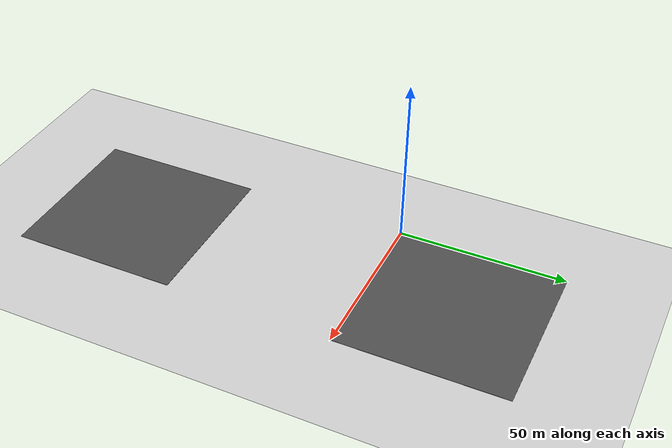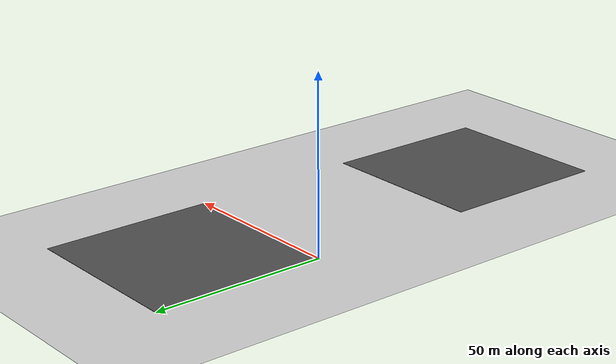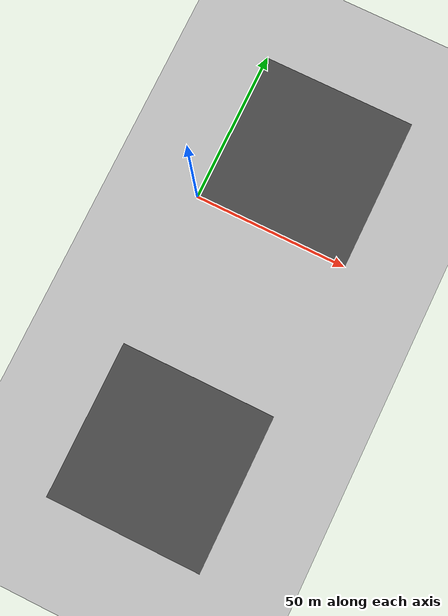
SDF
<sdf version="1.7">
 <world name="default">
  <model name="ground_plane">
   <static>1</static>
   <link name="link">
    <collision name="collision">
     <geometry><plane><normal>0 0 1</normal><size>100 100</size></plane></geometry>
     <surface>
      <contact><collide_bitmask>65535</collide_bitmask></contact>
      <friction><ode><mu>100</mu><mu2>50</mu2></ode></friction>
     </surface>
    </collision>
    <visual name="visual">
     <cast_shadows>0</cast_shadows>
     <geometry><plane><normal>0 0 1</normal><size>100 100</size></plane></geometry>
     <material>
      <script><uri>file://media/materials/scripts/gazebo.material</uri><name>Gazebo/Grey</name></script>
     </material>
    </visual>
   </link>
  </model>
  <model name="asphalt_plane">
   <link name="link">
    <inertial>
     <mass>1</mass>
     <inertia><ixx>1</ixx><ixy>0</ixy><ixz>0</ixz><iyy>1</iyy><iyz>0</iyz><izz>1</izz></inertia>
    </inertial>
    <visual name="visual">
     <cast_shadows>0</cast_shadows>
     <geometry><box><size>50 50 0.1</size></box></geometry>
     <material>
      <script>
       <uri>model://asphalt_plane/materials/scripts</uri>
       <uri>model://asphalt_plane/materials/textures</uri>
       <name>vrc/asphalt</name>
      </script>
      <shader type="pixel"><normal_map>__default__</normal_map></shader>
      <ambient>0.5 0.5 0.5 1</ambient>
      <diffuse>0.5 0.5 0.5 1</diffuse>
      <specular>0.2 0.2 0.2 1</specular>
      <emissive>0 0 0 1</emissive>
     </material>
    </visual>
    <collision name="collision">
     <geometry><box><size>50 50 0.1</size></box></geometry>
     <surface>
      <friction>
       <ode><mu>1</mu><mu2>1</mu2><fdir1>0 0 0</fdir1><slip1>0</slip1><slip2>0</slip2></ode>
       <torsional>
        <coefficient>1</coefficient>
        <patch_radius>0</patch_radius>
        <surface_radius>0</surface_radius>
        <use_patch_radius>1</use_patch_radius>
        <ode><slip>0</slip></ode>
       </torsional>
      </friction>
      <bounce><restitution_coefficient>0</restitution_coefficient><threshold>1e+06</threshold></bounce>
      <contact>
       <collide_without_contact>0</collide_without_contact>
       <collide_without_contact_bitmask>1</collide_without_contact_bitmask>
       <collide_bitmask>1</collide_bitmask>
       <ode>
        <soft_cfm>0</soft_cfm>
        <soft_erp>0.2</soft_erp>
        <kp>1e+13</kp>
        <kd>1</kd>
        <max_vel>0.01</max_vel>
        <min_depth>0</min_depth>
       </ode>
       <bullet>
        <split_impulse>1</split_impulse>
        <split_impulse_penetration_threshold>-0.01</split_impulse_penetration_threshold>
        <soft_cfm>0</soft_cfm>
        <soft_erp>0.2</soft_erp>
        <kp>1e+13</kp>
        <kd>1</kd>
       </bullet>
      </contact>
     </surface>
    </collision>
   </link>
   <static>1</static>
   <pose>25 25 0 0 -0 0</pose>
  </model>
  <model name="asphalt_plane_4">
   <link name="link">
    <inertial>
     <mass>1</mass>
     <inertia><ixx>1</ixx><ixy>0</ixy><ixz>0</ixz><iyy>1</iyy><iyz>0</iyz><izz>1</izz></inertia>
    </inertial>
    <visual name="visual">
     <cast_shadows>0</cast_shadows>
     <geometry><box><size>50 50 0.1</size></box></geometry>
     <material>
      <script>
       <uri>model://asphalt_plane/materials/scripts</uri>
       <uri>model://asphalt_plane/materials/textures</uri>
       <name>vrc/asphalt</name>
      </script>
      <shader type="pixel"><normal_map>__default__</normal_map></shader>
      <ambient>0.5 0.5 0.5 1</ambient>
      <diffuse>0.5 0.5 0.5 1</diffuse>
      <specular>0.2 0.2 0.2 1</specular>
      <emissive>0 0 0 1</emissive>
     </material>
    </visual>
    <collision name="collision">
     <geometry><box><size>50 50 0.1</size></box></geometry>
     <surface>
      <friction>
       <ode><mu>1</mu><mu2>1</mu2><fdir1>0 0 0</fdir1><slip1>0</slip1><slip2>0</slip2></ode>
       <torsional>
        <coefficient>1</coefficient>
        <patch_radius>0</patch_radius>
        <surface_radius>0</surface_radius>
        <use_patch_radius>1</use_patch_radius>
        <ode><slip>0</slip></ode>
       </torsional>
      </friction>
      <bounce><restitution_coefficient>0</restitution_coefficient><threshold>1e+06</threshold></bounce>
      <contact>
       <collide_without_contact>0</collide_without_contact>
       <collide_without_contact_bitmask>1</collide_without_contact_bitmask>
       <collide_bitmask>1</collide_bitmask>
       <ode>
        <soft_cfm>0</soft_cfm>
        <soft_erp>0.2</soft_erp>
        <kp>1e+13</kp>
        <kd>1</kd>
        <max_vel>0.01</max_vel>
        <min_depth>0</min_depth>
       </ode>
       <bullet>
        <split_impulse>1</split_impulse>
        <split_impulse_penetration_threshold>-0.01</split_impulse_penetration_threshold>
        <soft_cfm>0</soft_cfm>
        <soft_erp>0.2</soft_erp>
        <kp>1e+13</kp>
        <kd>1</kd>
       </bullet>
      </contact>
     </surface>
    </collision>
   </link>
   <static>1</static>
   <pose>25 -75 0 0 -0 0</pose>
  </model>
 </world>
</sdf>
